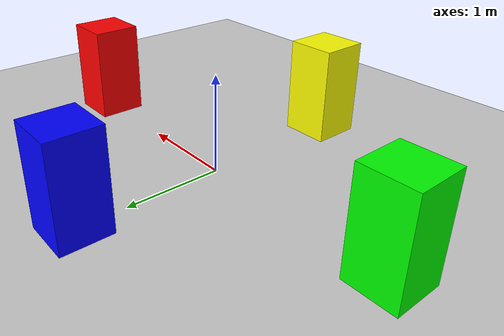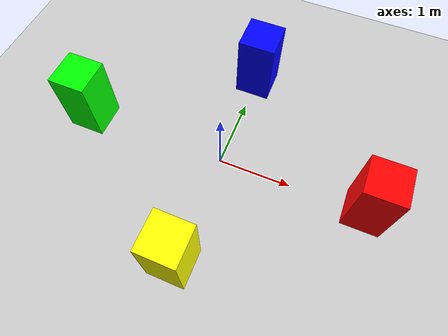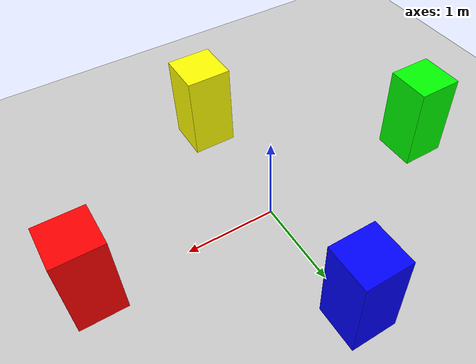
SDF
<?xml version="1.0" ?>
<sdf version="1.6">
  <world name="default">

    <!-- 物理引擎 -->
    <physics name="default" type="ode">
      <gravity>0 0 -9.8066</gravity>
      <ode>
        <solver>
          <type>quick</type>
          <iters>10</iters>
          <sor>1.3</sor>
        </solver>
        <constraints>
          <cfm>0.00001</cfm>
          <erp>0.2</erp>
          <contact_max_correcting_vel>100</contact_max_correcting_vel>
          <contact_surface_layer>0.001</contact_surface_layer>
        </constraints>
      </ode>
      <max_step_size>0.004</max_step_size>
      <real_time_factor>1</real_time_factor>
      <real_time_update_rate>250</real_time_update_rate>
    </physics>

    <!-- 场景 -->
    <scene>
      <ambient>0.4 0.4 0.4 1</ambient>
      <background>0.7 0.7 0.7 1</background>
      <shadows>true</shadows>
    </scene>

    <!-- Gazebo ROS 插件 -->
    <plugin name="gazebo_ros" filename="libgazebo_ros_api_plugin.so"/>

    <!-- 太阳光 -->
    <include>
      <uri>model://sun</uri>
    </include>

    <!-- 地面 -->
    <include>
      <uri>model://ground_plane</uri>
    </include>

    <!-- 前方的盒子障碍物 -->
    <model name="box_front">
      <pose>2 0 0.5 0 0 0</pose>
      <static>true</static>
      <link name="link">
        <collision name="collision">
          <geometry>
            <box>
              <size>0.5 0.5 1.0</size>
            </box>
          </geometry>
        </collision>
        <visual name="visual">
          <geometry>
            <box>
              <size>0.5 0.5 1.0</size>
            </box>
          </geometry>
          <material>
            <ambient>1 0 0 1</ambient>
            <diffuse>1 0 0 1</diffuse>
          </material>
        </visual>
      </link>
    </model>

    <!-- 后方的盒子障碍物 -->
    <model name="box_back">
      <pose>-2 0 0.5 0 0 0</pose>
      <static>true</static>
      <link name="link">
        <collision name="collision">
          <geometry>
            <box>
              <size>0.5 0.5 1.0</size>
            </box>
          </geometry>
        </collision>
        <visual name="visual">
          <geometry>
            <box>
              <size>0.5 0.5 1.0</size>
            </box>
          </geometry>
          <material>
            <ambient>0 1 0 1</ambient>
            <diffuse>0 1 0 1</diffuse>
          </material>
        </visual>
      </link>
    </model>

    <!-- 左侧的盒子障碍物 -->
    <model name="box_left">
      <pose>0 1.5 0.5 0 0 0</pose>
      <static>true</static>
      <link name="link">
        <collision name="collision">
          <geometry>
            <box>
              <size>0.5 0.5 1.0</size>
            </box>
          </geometry>
        </collision>
        <visual name="visual">
          <geometry>
            <box>
              <size>0.5 0.5 1.0</size>
            </box>
          </geometry>
          <material>
            <ambient>0 0 1 1</ambient>
            <diffuse>0 0 1 1</diffuse>
          </material>
        </visual>
      </link>
    </model>

    <!-- 右侧的盒子障碍物 -->
    <model name="box_right">
      <pose>0 -1.5 0.5 0 0 0</pose>
      <static>true</static>
      <link name="link">
        <collision name="collision">
          <geometry>
            <box>
              <size>0.5 0.5 1.0</size>
            </box>
          </geometry>
        </collision>
        <visual name="visual">
          <geometry>
            <box>
              <size>0.5 0.5 1.0</size>
            </box>
          </geometry>
          <material>
            <ambient>1 1 0 1</ambient>
            <diffuse>1 1 0 1</diffuse>
          </material>
        </visual>
      </link>
    </model>

  </world>
</sdf>
